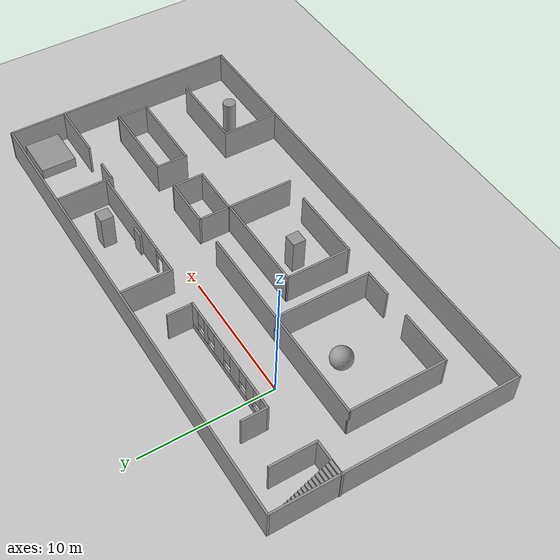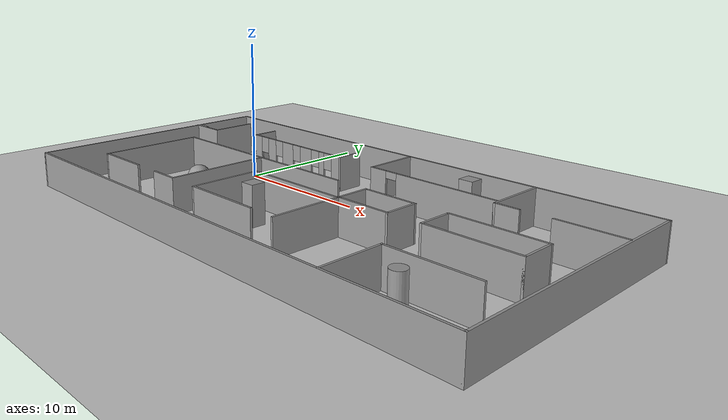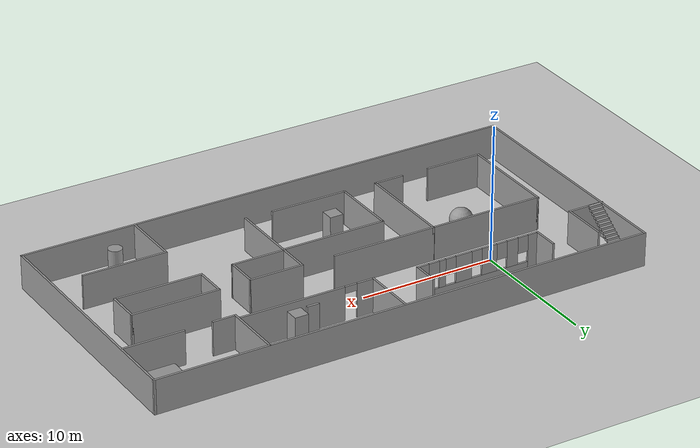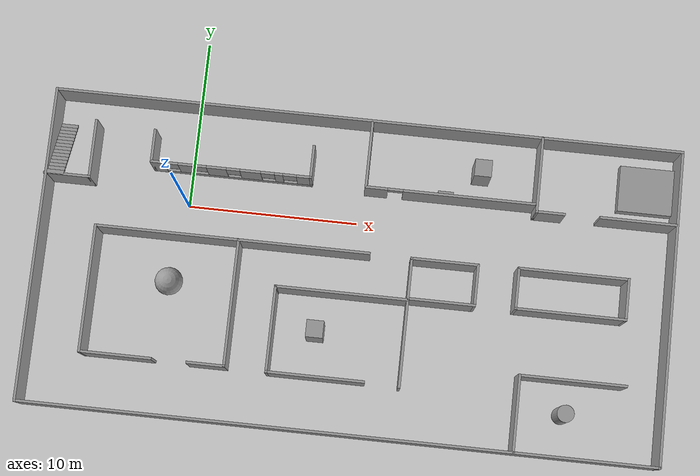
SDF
<sdf version="1.6">
 <world name="default">
  <light name="sun" type="directional">
   <pose>0 0 10 0 -0 0</pose>
   <diffuse>0.8 0.8 0.8 1</diffuse>
   <specular>0.2 0.2 0.2 1</specular>
   <attenuation>
    <range>1000</range>
    <constant>0.9</constant>
    <linear>0.01</linear>
    <quadratic>0.001</quadratic>
   </attenuation>
   <direction>-0.5 0.1 -0.9</direction>
  </light>
  <model name="ground_plane">
   <static>1</static>
   <link name="link">
    <collision name="collision">
     <geometry><plane><normal>0 0 1</normal><size>100 100</size></plane></geometry>
     <surface>
      <contact><collide_bitmask>65535</collide_bitmask></contact>
      <friction><ode><mu>100</mu><mu2>50</mu2></ode></friction>
     </surface>
    </collision>
    <visual name="visual">
     <cast_shadows>0</cast_shadows>
     <geometry><plane><normal>0 0 1</normal><size>100 100</size></plane></geometry>
     <material>
      <script><uri>file://media/materials/scripts/gazebo.material</uri><name>Gazebo/Grey</name></script>
     </material>
    </visual>
   </link>
  </model>
  <gravity>0 0 -9.8</gravity>
  <magnetic_field>6e-06 2.3e-05 -4.2e-05</magnetic_field>
  <atmosphere type="adiabatic"/>
  <physics name="default_physics" default="0" type="ode">
   <max_step_size>0.001</max_step_size>
   <real_time_factor>1</real_time_factor>
   <real_time_update_rate>1000</real_time_update_rate>
  </physics>
  <scene><ambient>0.4 0.4 0.4 1</ambient><background>0.7 0.7 0.7 1</background><shadows>1</shadows></scene>
  <audio><device>default</device></audio>
  <spherical_coordinates>
   <surface_model>EARTH_WGS84</surface_model>
   <latitude_deg>0</latitude_deg>
   <longitude_deg>0</longitude_deg>
   <elevation>0</elevation>
   <heading_deg>0</heading_deg>
  </spherical_coordinates>
  <model name="room">
   <pose>10.095 -3.39157 0 0 -0 0</pose>
   <link name="Door_0">
    <collision name="Door_0_Collision">
     <geometry><box><size>0.9 0.17 2</size></box></geometry>
     <pose>0 0 1 0 -0 0</pose>
    </collision>
    <visual name="Door_0_Visual">
     <pose>0 0 1 0 -0 0</pose>
     <geometry><box><size>0.9 0.17 2</size></box></geometry>
     <material>
      <script><uri>file://media/materials/scripts/gazebo.material</uri><name>Gazebo/Grey</name></script>
     </material>
    </visual>
    <pose>4.9284 5.43687 0 0 -0 0</pose>
   </link>
   <link name="Stairs_1">
    <visual name="Stairs_1_Visual_0">
     <pose>-17.8369 7.5009 0.083333 0 -0 0</pose>
     <geometry><box><size>1 0.233333 0.166667</size></box></geometry>
     <material>
      <script><uri>file://media/materials/scripts/gazebo.material</uri><name>Gazebo/Grey</name></script>
      <ambient>1 1 1 1</ambient>
     </material>
     <meta><layer>0</layer></meta>
    </visual>
    <collision name="Stairs_1_Collision_0">
     <geometry><box><size>1 0.233333 0.166667</size></box></geometry>
     <pose>-17.8369 7.5009 0.083333 0 -0 0</pose>
    </collision>
    <visual name="Stairs_1_Visual_1">
     <pose>-17.8369 7.26757 0.25 0 -0 0</pose>
     <geometry><box><size>1 0.233333 0.166667</size></box></geometry>
     <material>
      <script><uri>file://media/materials/scripts/gazebo.material</uri><name>Gazebo/Grey</name></script>
      <ambient>1 1 1 1</ambient>
     </material>
     <meta><layer>0</layer></meta>
    </visual>
    <collision name="Stairs_1_Collision_1">
     <geometry><box><size>1 0.233333 0.166667</size></box></geometry>
     <pose>-17.8369 7.26757 0.25 0 -0 0</pose>
    </collision>
    <visual name="Stairs_1_Visual_2">
     <pose>-17.8369 7.03424 0.416667 0 -0 0</pose>
     <geometry><box><size>1 0.233333 0.166667</size></box></geometry>
     <material>
      <script><uri>file://media/materials/scripts/gazebo.material</uri><name>Gazebo/Grey</name></script>
      <ambient>1 1 1 1</ambient>
     </material>
     <meta><layer>0</layer></meta>
    </visual>
    <collision name="Stairs_1_Collision_2">
     <geometry><box><size>1 0.233333 0.166667</size></box></geometry>
     <pose>-17.8369 7.03424 0.416667 0 -0 0</pose>
    </collision>
    <visual name="Stairs_1_Visual_3">
     <pose>-17.8369 6.8009 0.583333 0 -0 0</pose>
     <geometry><box><size>1 0.233333 0.166667</size></box></geometry>
     <material>
      <script><uri>file://media/materials/scripts/gazebo.material</uri><name>Gazebo/Grey</name></script>
      <ambient>1 1 1 1</ambient>
     </material>
     <meta><layer>0</layer></meta>
    </visual>
    <collision name="Stairs_1_Collision_3">
     <geometry><box><size>1 0.233333 0.166667</size></box></geometry>
     <pose>-17.8369 6.8009 0.583333 0 -0 0</pose>
    </collision>
    <visual name="Stairs_1_Visual_4">
     <pose>-17.8369 6.56757 0.75 0 -0 0</pose>
     <geometry><box><size>1 0.233333 0.166667</size></box></geometry>
     <material>
      <script><uri>file://media/materials/scripts/gazebo.material</uri><name>Gazebo/Grey</name></script>
      <ambient>1 1 1 1</ambient>
     </material>
     <meta><layer>0</layer></meta>
    </visual>
    <collision name="Stairs_1_Collision_4">
     <geometry><box><size>1 0.233333 0.166667</size></box></geometry>
     <pose>-17.8369 6.56757 0.75 0 -0 0</pose>
    </collision>
    <visual name="Stairs_1_Visual_5">
     <pose>-17.8369 6.33424 0.916667 0 -0 0</pose>
     <geometry><box><size>1 0.233333 0.166667</size></box></geometry>
     <material>
      <script><uri>file://media/materials/scripts/gazebo.material</uri><name>Gazebo/Grey</name></script>
      <ambient>1 1 1 1</ambient>
     </material>
     <meta><layer>0</layer></meta>
    </visual>
    <collision name="Stairs_1_Collision_5">
     <geometry><box><size>1 0.233333 0.166667</size></box></geometry>
     <pose>-17.8369 6.33424 0.916667 0 -0 0</pose>
    </collision>
    <visual name="Stairs_1_Visual_6">
     <pose>-17.8369 6.1009 1.08333 0 -0 0</pose>
     <geometry><box><size>1 0.233333 0.166667</size></box></geometry>
     <material>
      <script><uri>file://media/materials/scripts/gazebo.material</uri><name>Gazebo/Grey</name></script>
      <ambient>1 1 1 1</ambient>
     </material>
     <meta><layer>0</layer></meta>
    </visual>
    <collision name="Stairs_1_Collision_6">
     <geometry><box><size>1 0.233333 0.166667</size></box></geometry>
     <pose>-17.8369 6.1009 1.08333 0 -0 0</pose>
    </collision>
    <visual name="Stairs_1_Visual_7">
     <pose>-17.8369 5.86757 1.25 0 -0 0</pose>
     <geometry><box><size>1 0.233333 0.166667</size></box></geometry>
     <material>
      <script><uri>file://media/materials/scripts/gazebo.material</uri><name>Gazebo/Grey</name></script>
      <ambient>1 1 1 1</ambient>
     </material>
     <meta><layer>0</layer></meta>
    </visual>
    <collision name="Stairs_1_Collision_7">
     <geometry><box><size>1 0.233333 0.166667</size></box></geometry>
     <pose>-17.8369 5.86757 1.25 0 -0 0</pose>
    </collision>
    <visual name="Stairs_1_Visual_8">
     <pose>-17.8369 5.63424 1.41667 0 -0 0</pose>
     <geometry><box><size>1 0.233333 0.166667</size></box></geometry>
     <material>
      <script><uri>file://media/materials/scripts/gazebo.material</uri><name>Gazebo/Grey</name></script>
      <ambient>1 1 1 1</ambient>
     </material>
     <meta><layer>0</layer></meta>
    </visual>
    <collision name="Stairs_1_Collision_8">
     <geometry><box><size>1 0.233333 0.166667</size></box></geometry>
     <pose>-17.8369 5.63424 1.41667 0 -0 0</pose>
    </collision>
    <visual name="Stairs_1_Visual_9">
     <pose>-17.8369 5.4009 1.58333 0 -0 0</pose>
     <geometry><box><size>1 0.233333 0.166667</size></box></geometry>
     <material>
      <script><uri>file://media/materials/scripts/gazebo.material</uri><name>Gazebo/Grey</name></script>
      <ambient>1 1 1 1</ambient>
     </material>
     <meta><layer>0</layer></meta>
    </visual>
    <collision name="Stairs_1_Collision_9">
     <geometry><box><size>1 0.233333 0.166667</size></box></geometry>
     <pose>-17.8369 5.4009 1.58333 0 -0 0</pose>
    </collision>
    <visual name="Stairs_1_Visual_10">
     <pose>-17.8369 5.16757 1.75 0 -0 0</pose>
     <geometry><box><size>1 0.233333 0.166667</size></box></geometry>
     <material>
      <script><uri>file://media/materials/scripts/gazebo.material</uri><name>Gazebo/Grey</name></script>
      <ambient>1 1 1 1</ambient>
     </material>
     <meta><layer>0</layer></meta>
    </visual>
    <collision name="Stairs_1_Collision_10">
     <geometry><box><size>1 0.233333 0.166667</size></box></geometry>
     <pose>-17.8369 5.16757 1.75 0 -0 0</pose>
    </collision>
    <visual name="Stairs_1_Visual_11">
     <pose>-17.8369 4.93424 1.91667 0 -0 0</pose>
     <geometry><box><size>1 0.233333 0.166667</size></box></geometry>
     <material>
      <script><uri>file://media/materials/scripts/gazebo.material</uri><name>Gazebo/Grey</name></script>
      <ambient>1 1 1 1</ambient>
     </material>
     <meta><layer>0</layer></meta>
    </visual>
    <collision name="Stairs_1_Collision_11">
     <geometry><box><size>1 0.233333 0.166667</size></box></geometry>
     <pose>-17.8369 4.93424 1.91667 0 -0 0</pose>
    </collision>
    <visual name="Stairs_1_Visual_12">
     <pose>-17.8369 4.7009 2.08333 0 -0 0</pose>
     <geometry><box><size>1 0.233333 0.166667</size></box></geometry>
     <material>
      <script><uri>file://media/materials/scripts/gazebo.material</uri><name>Gazebo/Grey</name></script>
      <ambient>1 1 1 1</ambient>
     </material>
     <meta><layer>0</layer></meta>
    </visual>
    <collision name="Stairs_1_Collision_12">
     <geometry><box><size>1 0.233333 0.166667</size></box></geometry>
     <pose>-17.8369 4.7009 2.08333 0 -0 0</pose>
    </collision>
    <visual name="Stairs_1_Visual_13">
     <pose>-17.8369 4.46757 2.25 0 -0 0</pose>
     <geometry><box><size>1 0.233333 0.166667</size></box></geometry>
     <material>
      <script><uri>file://media/materials/scripts/gazebo.material</uri><name>Gazebo/Grey</name></script>
      <ambient>1 1 1 1</ambient>
     </material>
     <meta><layer>0</layer></meta>
    </visual>
    <collision name="Stairs_1_Collision_13">
     <geometry><box><size>1 0.233333 0.166667</size></box></geometry>
     <pose>-17.8369 4.46757 2.25 0 -0 0</pose>
    </collision>
    <visual name="Stairs_1_Visual_14">
     <pose>-17.8369 4.23424 2.41667 0 -0 0</pose>
     <geometry><box><size>1 0.233333 0.166667</size></box></geometry>
     <material>
      <script><uri>file://media/materials/scripts/gazebo.material</uri><name>Gazebo/Grey</name></script>
      <ambient>1 1 1 1</ambient>
     </material>
     <meta><layer>0</layer></meta>
    </visual>
    <collision name="Stairs_1_Collision_14">
     <geometry><box><size>1 0.233333 0.166667</size></box></geometry>
     <pose>-17.8369 4.23424 2.41667 0 -0 0</pose>
    </collision>
   </link>
   <link name="Wall_10">
    <collision name="Wall_10_Collision">
     <geometry><box><size>1.75 0.15 2.5</size></box></geometry>
     <pose>0 0 1.25 0 -0 0</pose>
    </collision>
    <visual name="Wall_10_Visual">
     <pose>0 0 1.25 0 -0 0</pose>
     <geometry><box><size>1.75 0.15 2.5</size></box></geometry>
     <material>
      <script><uri>file://media/materials/scripts/gazebo.material</uri><name>Gazebo/Grey</name></script>
      <ambient>1 1 1 1</ambient>
     </material>
     <meta><layer>0</layer></meta>
    </visual>
    <pose>11.0588 4.79197 0 0 -0 0</pose>
   </link>
   <link name="Wall_12">
    <collision name="Wall_12_Collision">
     <geometry><box><size>4.5 0.15 2.5</size></box></geometry>
     <pose>0 0 1.25 0 -0 0</pose>
    </collision>
    <visual name="Wall_12_Visual">
     <pose>0 0 1.25 0 -0 0</pose>
     <geometry><box><size>4.5 0.15 2.5</size></box></geometry>
     <material>
      <script><uri>file://media/materials/scripts/gazebo.material</uri><name>Gazebo/Grey</name></script>
      <ambient>1 1 1 1</ambient>
     </material>
     <meta><layer>0</layer></meta>
    </visual>
    <pose>16.1839 4.82579 0 0 -0 0</pose>
   </link>
   <link name="Wall_14">
    <collision name="Wall_14_Collision">
     <geometry><box><size>4.5 0.15 2.5</size></box></geometry>
     <pose>0 0 1.25 0 -0 0</pose>
    </collision>
    <visual name="Wall_14_Visual">
     <pose>0 0 1.25 0 -0 0</pose>
     <geometry><box><size>4.5 0.15 2.5</size></box></geometry>
     <material>
      <script><uri>file://media/materials/scripts/gazebo.material</uri><name>Gazebo/Grey</name></script>
      <ambient>1 1 1 1</ambient>
     </material>
     <meta><layer>0</layer></meta>
    </visual>
    <pose>10.1173 -6.93835 0 0 -0 1.5708</pose>
   </link>
   <link name="Wall_15">
    <collision name="Wall_15_Collision">
     <geometry><box><size>6.25 0.15 2.5</size></box></geometry>
     <pose>0 0 1.25 0 -0 0</pose>
    </collision>
    <visual name="Wall_15_Visual">
     <pose>0 0 1.25 0 -0 0</pose>
     <geometry><box><size>6.25 0.15 2.5</size></box></geometry>
     <material>
      <script><uri>file://media/materials/scripts/gazebo.material</uri><name>Gazebo/Grey</name></script>
      <ambient>1 1 1 1</ambient>
     </material>
     <meta><layer>0</layer></meta>
    </visual>
    <pose>13.1673 -4.76335 0 0 -0 0</pose>
   </link>
   <link name="Wall_17">
    <collision name="Wall_17_Collision">
     <geometry><box><size>5.25 0.15 2.5</size></box></geometry>
     <pose>0 0 1.25 0 -0 0</pose>
    </collision>
    <visual name="Wall_17_Visual">
     <pose>0 0 1.25 0 -0 0</pose>
     <geometry><box><size>5.25 0.15 2.5</size></box></geometry>
     <material>
      <script><uri>file://media/materials/scripts/gazebo.material</uri><name>Gazebo/Grey</name></script>
      <ambient>1 1 1 1</ambient>
     </material>
     <meta><layer>0</layer></meta>
    </visual>
    <pose>3.32461 -3.59155 0 0 -0 1.5708</pose>
   </link>
   <link name="Wall_18">
    <collision name="Wall_18_Collision">
     <geometry><box><size>4 0.15 2.5</size></box></geometry>
     <pose>0 0 1.25 0 -0 0</pose>
    </collision>
    <visual name="Wall_18_Visual">
     <pose>0 0 1.25 0 -0 0</pose>
     <geometry><box><size>4 0.15 2.5</size></box></geometry>
     <material>
      <script><uri>file://media/materials/scripts/gazebo.material</uri><name>Gazebo/Grey</name></script>
      <ambient>1 1 1 1</ambient>
     </material>
     <meta><layer>0</layer></meta>
    </visual>
    <pose>5.24961 -1.04155 0 0 -0 0</pose>
   </link>
   <link name="Wall_19">
    <collision name="Wall_19_Collision">
     <geometry><box><size>2.5 0.15 2.5</size></box></geometry>
     <pose>0 0 1.25 0 -0 0</pose>
    </collision>
    <visual name="Wall_19_Visual">
     <pose>0 0 1.25 0 -0 0</pose>
     <geometry><box><size>2.5 0.15 2.5</size></box></geometry>
     <material>
      <script><uri>file://media/materials/scripts/gazebo.material</uri><name>Gazebo/Grey</name></script>
      <ambient>1 1 1 1</ambient>
     </material>
     <meta><layer>0</layer></meta>
    </visual>
    <pose>7.17461 0.133447 0 0 -0 1.5708</pose>
   </link>
   <link name="Wall_20">
    <collision name="Wall_20_Collision">
     <geometry><box><size>4 0.15 2.5</size></box></geometry>
     <pose>0 0 1.25 0 -0 0</pose>
    </collision>
    <visual name="Wall_20_Visual">
     <pose>0 0 1.25 0 -0 0</pose>
     <geometry><box><size>4 0.15 2.5</size></box></geometry>
     <material>
      <script><uri>file://media/materials/scripts/gazebo.material</uri><name>Gazebo/Grey</name></script>
      <ambient>1 1 1 1</ambient>
     </material>
     <meta><layer>0</layer></meta>
    </visual>
    <pose>5.24961 1.30845 0 0 -0 3.14159</pose>
   </link>
   <link name="Wall_21">
    <collision name="Wall_21_Collision">
     <geometry><box><size>2.5 0.15 2.5</size></box></geometry>
     <pose>0 0 1.25 0 -0 0</pose>
    </collision>
    <visual name="Wall_21_Visual">
     <pose>0 0 1.25 0 -0 0</pose>
     <geometry><box><size>2.5 0.15 2.5</size></box></geometry>
     <material>
      <script><uri>file://media/materials/scripts/gazebo.material</uri><name>Gazebo/Grey</name></script>
      <ambient>1 1 1 1</ambient>
     </material>
     <meta><layer>0</layer></meta>
    </visual>
    <pose>3.32461 0.133447 0 0 -0 -1.5708</pose>
   </link>
   <link name="Wall_23">
    <collision name="Wall_23_Collision">
     <geometry><box><size>5.75 0.15 2.5</size></box></geometry>
     <pose>0 0 1.25 0 -0 0</pose>
    </collision>
    <visual name="Wall_23_Visual">
     <pose>0 0 1.25 0 -0 0</pose>
     <geometry><box><size>5.75 0.15 2.5</size></box></geometry>
     <material>
      <script><uri>file://media/materials/scripts/gazebo.material</uri><name>Gazebo/Grey</name></script>
      <ambient>1 1 1 1</ambient>
     </material>
     <meta><layer>0</layer></meta>
    </visual>
    <pose>-1.52735 -6.0708 0 0 -0 3.14159</pose>
   </link>
   <link name="Wall_24">
    <collision name="Wall_24_Collision">
     <geometry><box><size>5 0.15 2.5</size></box></geometry>
     <pose>0 0 1.25 0 -0 0</pose>
    </collision>
    <visual name="Wall_24_Visual">
     <pose>0 0 1.25 0 -0 0</pose>
     <geometry><box><size>5 0.15 2.5</size></box></geometry>
     <material>
      <script><uri>file://media/materials/scripts/gazebo.material</uri><name>Gazebo/Grey</name></script>
      <ambient>1 1 1 1</ambient>
     </material>
     <meta><layer>0</layer></meta>
    </visual>
    <pose>-4.32735 -3.6458 0 0 -0 1.5708</pose>
   </link>
   <link name="Wall_27">
    <collision name="Wall_27_Collision">
     <geometry><box><size>0.25 0.15 2.5</size></box></geometry>
     <pose>0 0 1.25 0 -0 0</pose>
    </collision>
    <visual name="Wall_27_Visual">
     <pose>0 0 1.25 0 -0 0</pose>
     <geometry><box><size>0.25 0.15 2.5</size></box></geometry>
     <material>
      <script><uri>file://media/materials/scripts/gazebo.material</uri><name>Gazebo/Grey</name></script>
      <ambient>1 1 1 1</ambient>
     </material>
     <meta><layer>0</layer></meta>
    </visual>
    <pose>-4.32735 -1.1708 0 0 -0 1.5708</pose>
   </link>
   <link name="Wall_28">
    <collision name="Wall_28_Collision">
     <geometry><box><size>7.75 0.15 2.5</size></box></geometry>
     <pose>0 0 1.25 0 -0 0</pose>
    </collision>
    <visual name="Wall_28_Visual">
     <pose>0 0 1.25 0 -0 0</pose>
     <geometry><box><size>7.75 0.15 2.5</size></box></geometry>
     <material>
      <script><uri>file://media/materials/scripts/gazebo.material</uri><name>Gazebo/Grey</name></script>
      <ambient>1 1 1 1</ambient>
     </material>
     <meta><layer>0</layer></meta>
    </visual>
    <pose>-0.527349 -1.1208 0 0 -0 0</pose>
   </link>
   <link name="Wall_30">
    <collision name="Wall_30_Collision">
     <geometry><box><size>2.5 0.15 2.5</size></box></geometry>
     <pose>0 0 1.25 0 -0 0</pose>
    </collision>
    <visual name="Wall_30_Visual">
     <pose>0 0 1.25 0 -0 0</pose>
     <geometry><box><size>2.5 0.15 2.5</size></box></geometry>
     <material>
      <script><uri>file://media/materials/scripts/gazebo.material</uri><name>Gazebo/Grey</name></script>
      <ambient>1 1 1 1</ambient>
     </material>
     <meta><layer>0</layer></meta>
    </visual>
    <pose>9.54299 0.201035 0 0 -0 -1.5708</pose>
   </link>
   <link name="Wall_31">
    <collision name="Wall_31_Collision">
     <geometry><box><size>6.5 0.15 2.5</size></box></geometry>
     <pose>0 0 1.25 0 -0 0</pose>
    </collision>
    <visual name="Wall_31_Visual">
     <pose>0 0 1.25 0 -0 0</pose>
     <geometry><box><size>6.5 0.15 2.5</size></box></geometry>
     <material>
      <script><uri>file://media/materials/scripts/gazebo.material</uri><name>Gazebo/Grey</name></script>
      <ambient>1 1 1 1</ambient>
     </material>
     <meta><layer>0</layer></meta>
    </visual>
    <pose>12.718 -0.973964 0 0 -0 0</pose>
   </link>
   <link name="Wall_32">
    <collision name="Wall_32_Collision">
     <geometry><box><size>2.5 0.15 2.5</size></box></geometry>
     <pose>0 0 1.25 0 -0 0</pose>
    </collision>
    <visual name="Wall_32_Visual">
     <pose>0 0 1.25 0 -0 0</pose>
     <geometry><box><size>2.5 0.15 2.5</size></box></geometry>
     <material>
      <script><uri>file://media/materials/scripts/gazebo.material</uri><name>Gazebo/Grey</name></script>
      <ambient>1 1 1 1</ambient>
     </material>
     <meta><layer>0</layer></meta>
    </visual>
    <pose>15.893 0.201035 0 0 -0 1.5708</pose>
   </link>
   <link name="Wall_33">
    <collision name="Wall_33_Collision">
     <geometry><box><size>6.5 0.15 2.5</size></box></geometry>
     <pose>0 0 1.25 0 -0 0</pose>
    </collision>
    <visual name="Wall_33_Visual">
     <pose>0 0 1.25 0 -0 0</pose>
     <geometry><box><size>6.5 0.15 2.5</size></box></geometry>
     <material>
      <script><uri>file://media/materials/scripts/gazebo.material</uri><name>Gazebo/Grey</name></script>
      <ambient>1 1 1 1</ambient>
     </material>
     <meta><layer>0</layer></meta>
    </visual>
    <pose>12.718 1.37604 0 0 -0 3.14159</pose>
   </link>
   <link name="Wall_35">
    <collision name="Wall_35_Collision">
     <geometry><box><size>7.5 0.15 2.5</size></box></geometry>
     <pose>0 0 1.25 0 -0 0</pose>
    </collision>
    <visual name="Wall_35_Visual">
     <pose>0 0 1.25 0 -0 0</pose>
     <geometry><box><size>7.5 0.15 2.5</size></box></geometry>
     <material>
      <script><uri>file://media/materials/scripts/gazebo.material</uri><name>Gazebo/Grey</name></script>
      <ambient>1 1 1 1</ambient>
     </material>
     <meta><layer>0</layer></meta>
    </visual>
    <pose>-6.76189 -2.33231 0 0 -0 1.5708</pose>
   </link>
   <link name="Wall_36">
    <collision name="Wall_36_Collision">
     <geometry><box><size>7.75 0.15 2.5</size></box></geometry>
     <pose>0 0 1.25 0 -0 0</pose>
    </collision>
    <visual name="Wall_36_Visual">
     <pose>0 0 1.25 0 -0 0</pose>
     <geometry><box><size>7.75 0.15 2.5</size></box></geometry>
     <material>
      <script><uri>file://media/materials/scripts/gazebo.material</uri><name>Gazebo/Grey</name></script>
      <ambient>1 1 1 1</ambient>
     </material>
     <meta><layer>0</layer></meta>
    </visual>
    <pose>-2.9619 1.34269 0 0 -0 0</pose>
   </link>
   <link name="Wall_38">
    <collision name="Wall_38_Collision">
     <geometry><box><size>2.25 0.15 2.5</size></box></geometry>
     <pose>0 0 1.25 0 -0 0</pose>
    </collision>
    <visual name="Wall_38_Visual">
     <pose>0 0 1.25 0 -0 0</pose>
     <geometry><box><size>2.25 0.15 2.5</size></box></geometry>
     <material>
      <script><uri>file://media/materials/scripts/gazebo.material</uri><name>Gazebo/Grey</name></script>
      <ambient>1 1 1 1</ambient>
     </material>
     <meta><layer>0</layer></meta>
    </visual>
    <pose>-7.81189 -6.00731 0 0 -0 3.14159</pose>
   </link>
   <link name="Wall_4">
    <collision name="Wall_4_Collision">
     <geometry><box><size>18.5 0.15 2.5</size></box></geometry>
     <pose>0 0 1.25 0 -0 0</pose>
    </collision>
    <visual name="Wall_4_Visual">
     <pose>0 0 1.25 0 -0 0</pose>
     <geometry><box><size>18.5 0.15 2.5</size></box></geometry>
     <material>
      <script><uri>file://media/materials/scripts/gazebo.material</uri><name>Gazebo/Grey</name></script>
      <ambient>1 1 1 1</ambient>
     </material>
     <meta><layer>0</layer></meta>
    </visual>
    <pose>-18.3978 0 0 0 -0 -1.5708</pose>
   </link>
   <link name="Wall_40">
    <collision name="Wall_40_Collision">
     <geometry><box><size>4.25 0.15 2.5</size></box></geometry>
     <pose>0 0 1.25 0 -0 0</pose>
    </collision>
    <visual name="Wall_40_Visual">
     <pose>0 0 1.25 0 -0 0</pose>
     <geometry><box><size>4.25 0.15 2.5</size></box></geometry>
     <material>
      <script><uri>file://media/materials/scripts/gazebo.material</uri><name>Gazebo/Grey</name></script>
      <ambient>1 1 1 1</ambient>
     </material>
     <meta><layer>0</layer></meta>
    </visual>
    <pose>-13.0573 -6.00731 0 0 -0 3.14159</pose>
   </link>
   <link name="Wall_41">
    <collision name="Wall_41_Collision">
     <geometry><box><size>7.5 0.15 2.5</size></box></geometry>
     <pose>0 0 1.25 0 -0 0</pose>
    </collision>
    <visual name="Wall_41_Visual">
     <pose>0 0 1.25 0 -0 0</pose>
     <geometry><box><size>7.5 0.15 2.5</size></box></geometry>
     <material>
      <script><uri>file://media/materials/scripts/gazebo.material</uri><name>Gazebo/Grey</name></script>
      <ambient>1 1 1 1</ambient>
     </material>
     <meta><layer>0</layer></meta>
    </visual>
    <pose>-15.1073 -2.33231 0 0 -0 1.5708</pose>
   </link>
   <link name="Wall_42">
    <collision name="Wall_42_Collision">
     <geometry><box><size>8.49542 0.15 2.5</size></box></geometry>
     <pose>0 0 1.25 0 -0 0</pose>
    </collision>
    <visual name="Wall_42_Visual">
     <pose>0 0 1.25 0 -0 0</pose>
     <geometry><box><size>8.49542 0.15 2.5</size></box></geometry>
     <material>
      <script><uri>file://media/materials/scripts/gazebo.material</uri><name>Gazebo/Grey</name></script>
      <ambient>1 1 1 1</ambient>
     </material>
     <meta><layer>0</layer></meta>
    </visual>
    <pose>-10.9346 1.34269 0 0 -0 0</pose>
   </link>
   <link name="Wall_44">
    <collision name="Wall_44_Collision">
     <geometry><box><size>4 0.15 2.5</size></box></geometry>
     <pose>0 0 1.25 0 -0 0</pose>
    </collision>
    <visual name="Wall_44_Visual">
     <pose>0 0 1.25 0 -0 0</pose>
     <geometry><box><size>4 0.15 2.5</size></box></geometry>
     <material>
      <script><uri>file://media/materials/scripts/gazebo.material</uri><name>Gazebo/Grey</name></script>
      <ambient>1 1 1 1</ambient>
     </material>
     <meta><layer>0</layer></meta>
    </visual>
    <pose>0.252283 7.14202 0 0 -0 -1.5708</pose>
   </link>
   <link name="Wall_46">
    <collision name="Wall_46_Collision">
     <geometry><box><size>2.75 0.15 2.5</size></box></geometry>
     <pose>0 0 1.25 0 -0 0</pose>
    </collision>
    <visual name="Wall_46_Visual">
     <pose>0 0 1.25 0 -0 0</pose>
     <geometry><box><size>2.75 0.15 2.5</size></box></geometry>
     <material>
      <script><uri>file://media/materials/scripts/gazebo.material</uri><name>Gazebo/Grey</name></script>
      <ambient>1 1 1 1</ambient>
     </material>
     <meta><layer>0</layer></meta>
    </visual>
    <pose>-17.1522 4.14479 0 0 -0 0</pose>
   </link>
   <link name="Wall_47">
    <collision name="Wall_47_Collision">
     <geometry><box><size>3.5 0.15 2.5</size></box></geometry>
     <pose>0 0 1.25 0 -0 0</pose>
    </collision>
    <visual name="Wall_47_Visual">
     <pose>0 0 1.25 0 -0 0</pose>
     <geometry><box><size>3.5 0.15 2.5</size></box></geometry>
     <material>
      <script><uri>file://media/materials/scripts/gazebo.material</uri><name>Gazebo/Grey</name></script>
      <ambient>1 1 1 1</ambient>
     </material>
     <meta><layer>0</layer></meta>
    </visual>
    <pose>-15.8522 5.81979 0 0 -0 1.5708</pose>
   </link>
   <link name="Wall_49">
    <collision name="Wall_49_Collision">
     <geometry><box><size>2 0.15 2.5</size></box></geometry>
     <pose>0 0 1.25 0 -0 0</pose>
    </collision>
    <visual name="Wall_49_Visual">
     <pose>0 0 1.25 0 -0 0</pose>
     <geometry><box><size>2 0.15 2.5</size></box></geometry>
     <material>
      <script><uri>file://media/materials/scripts/gazebo.material</uri><name>Gazebo/Grey</name></script>
      <ambient>1 1 1 1</ambient>
     </material>
     <meta><layer>0</layer></meta>
    </visual>
    <pose>-12.3609 6.35771 0 0 -0 -1.5708</pose>
   </link>
   <link name="Wall_5">
    <collision name="Wall_5_Collision">
     <geometry><box><size>37 0.15 2.5</size></box></geometry>
     <pose>0 0 1.25 0 -0 0</pose>
    </collision>
    <visual name="Wall_5_Visual">
     <pose>0 0 1.25 0 -0 0</pose>
     <geometry><box><size>37 0.15 2.5</size></box></geometry>
     <material>
      <script><uri>file://media/materials/scripts/gazebo.material</uri><name>Gazebo/Grey</name></script>
      <ambient>1 1 1 1</ambient>
     </material>
     <meta><layer>0</layer></meta>
    </visual>
    <pose>0.02719 -9.175 0 0 -0 0</pose>
   </link>
   <link name="Wall_50">
    <pose>-7.68593 5.43271 0 0 -0 0</pose>
    <visual name="Wall_50_Visual_0">
     <pose>-4.32798 0 1.25 0 -0 0</pose>
     <geometry><box><size>0.84403 0.15 2.5</size></box></geometry>
     <material>
      <script><uri>file://media/materials/scripts/gazebo.material</uri><name>Gazebo/Grey</name></script>
      <ambient>1 1 1 1</ambient>
     </material>
     <meta><layer>0</layer></meta>
    </visual>
    <collision name="Wall_50_Collision_0">
     <geometry><box><size>0.84403 0.15 2.5</size></box></geometry>
     <pose>-4.32798 0 1.25 0 -0 0</pose>
    </collision>
    <visual name="Wall_50_Visual_1">
     <pose>0.422015 0 0.25 0 -0 0</pose>
     <geometry><box><size>8.65597 0.15 0.5</size></box></geometry>
     <material>
      <script><uri>file://media/materials/scripts/gazebo.material</uri><name>Gazebo/Grey</name></script>
      <ambient>1 1 1 1</ambient>
     </material>
     <meta><layer>0</layer></meta>
    </visual>
    <collision name="Wall_50_Collision_1">
     <geometry><box><size>8.65597 0.15 0.5</size></box></geometry>
     <pose>0.422015 0 0.25 0 -0 0</pose>
    </collision>
    <visual name="Wall_50_Visual_2">
     <pose>-2.67534 0 1.5 0 -0 0</pose>
     <geometry><box><size>0.861253 0.15 2</size></box></geometry>
     <material>
      <script><uri>file://media/materials/scripts/gazebo.material</uri><name>Gazebo/Grey</name></script>
      <ambient>1 1 1 1</ambient>
     </material>
     <meta><layer>0</layer></meta>
    </visual>
    <collision name="Wall_50_Collision_2">
     <geometry><box><size>0.861253 0.15 2</size></box></geometry>
     <pose>-2.67534 0 1.5 0 -0 0</pose>
    </collision>
    <visual name="Wall_50_Visual_3">
     <pose>-0.860272 0 1.5 0 -0 0</pose>
     <geometry><box><size>1.16889 0.15 2</size></box></geometry>
     <material>
      <script><uri>file://media/materials/scripts/gazebo.material</uri><name>Gazebo/Grey</name></script>
      <ambient>1 1 1 1</ambient>
     </material>
     <meta><layer>0</layer></meta>
    </visual>
    <collision name="Wall_50_Collision_3">
     <geometry><box><size>1.16889 0.15 2</size></box></geometry>
     <pose>-0.860272 0 1.5 0 -0 0</pose>
    </collision>
    <visual name="Wall_50_Visual_4">
     <pose>1.13938 0 1.5 0 -0 0</pose>
     <geometry><box><size>1.23042 0.15 2</size></box></geometry>
     <material>
      <script><uri>file://media/materials/scripts/gazebo.material</uri><name>Gazebo/Grey</name></script>
      <ambient>1 1 1 1</ambient>
     </material>
     <meta><layer>0</layer></meta>
    </visual>
    <collision name="Wall_50_Collision_4">
     <geometry><box><size>1.23042 0.15 2</size></box></geometry>
     <pose>1.13938 0 1.5 0 -0 0</pose>
    </collision>
    <visual name="Wall_50_Visual_5">
     <pose>2.80064 0 1.5 0 -0 0</pose>
     <geometry><box><size>0.492085 0.15 2</size></box></geometry>
     <material>
      <script><uri>file://media/materials/scripts/gazebo.material</uri><name>Gazebo/Grey</name></script>
      <ambient>1 1 1 1</ambient>
     </material>
     <meta><layer>0</layer></meta>
    </visual>
    <collision name="Wall_50_Collision_5">
     <geometry><box><size>0.492085 0.15 2</size></box></geometry>
     <pose>2.80064 0 1.5 0 -0 0</pose>
    </collision>
    <visual name="Wall_50_Visual_6">
     <pose>4.29834 0 1.5 0 -0 0</pose>
     <geometry><box><size>0.90332 0.15 2</size></box></geometry>
     <material>
      <script><uri>file://media/materials/scripts/gazebo.material</uri><name>Gazebo/Grey</name></script>
      <ambient>1 1 1 1</ambient>
     </material>
     <meta><layer>0</layer></meta>
    </visual>
    <collision name="Wall_50_Collision_6">
     <geometry><box><size>0.90332 0.15 2</size></box></geometry>
     <pose>4.29834 0 1.5 0 -0 0</pose>
    </collision>
    <visual name="Wall_50_Visual_7">
     <pose>-3.50597 0 1.9 0 -0 0</pose>
     <geometry><box><size>0.8 0.15 1.2</size></box></geometry>
     <material>
      <script><uri>file://media/materials/scripts/gazebo.material</uri><name>Gazebo/Grey</name></script>
      <ambient>1 1 1 1</ambient>
     </material>
     <meta><layer>0</layer></meta>
    </visual>
    <collision name="Wall_50_Collision_7">
     <geometry><box><size>0.8 0.15 1.2</size></box></geometry>
     <pose>-3.50597 0 1.9 0 -0 0</pose>
    </collision>
    <visual name="Wall_50_Visual_8">
     <pose>-1.84472 0 1.9 0 -0 0</pose>
     <geometry><box><size>0.8 0.15 1.2</size></box></geometry>
     <material>
      <script><uri>file://media/materials/scripts/gazebo.material</uri><name>Gazebo/Grey</name></script>
      <ambient>1 1 1 1</ambient>
     </material>
     <meta><layer>0</layer></meta>
    </visual>
    <collision name="Wall_50_Collision_8">
     <geometry><box><size>0.8 0.15 1.2</size></box></geometry>
     <pose>-1.84472 0 1.9 0 -0 0</pose>
    </collision>
    <visual name="Wall_50_Visual_9">
     <pose>0.124174 0 1.9 0 -0 0</pose>
     <geometry><box><size>0.8 0.15 1.2</size></box></geometry>
     <material>
      <script><uri>file://media/materials/scripts/gazebo.material</uri><name>Gazebo/Grey</name></script>
      <ambient>1 1 1 1</ambient>
     </material>
     <meta><layer>0</layer></meta>
    </visual>
    <collision name="Wall_50_Collision_9">
     <geometry><box><size>0.8 0.15 1.2</size></box></geometry>
     <pose>0.124174 0 1.9 0 -0 0</pose>
    </collision>
    <visual name="Wall_50_Visual_10">
     <pose>2.15459 0 1.9 0 -0 0</pose>
     <geometry><box><size>0.8 0.15 1.2</size></box></geometry>
     <material>
      <script><uri>file://media/materials/scripts/gazebo.material</uri><name>Gazebo/Grey</name></script>
      <ambient>1 1 1 1</ambient>
     </material>
     <meta><layer>0</layer></meta>
    </visual>
    <collision name="Wall_50_Collision_10">
     <geometry><box><size>0.8 0.15 1.2</size></box></geometry>
     <pose>2.15459 0 1.9 0 -0 0</pose>
    </collision>
    <visual name="Wall_50_Visual_11">
     <pose>3.44668 0 1.9 0 -0 0</pose>
     <geometry><box><size>0.8 0.15 1.2</size></box></geometry>
     <material>
      <script><uri>file://media/materials/scripts/gazebo.material</uri><name>Gazebo/Grey</name></script>
      <ambient>1 1 1 1</ambient>
     </material>
     <meta><layer>0</layer></meta>
    </visual>
    <collision name="Wall_50_Collision_11">
     <geometry><box><size>0.8 0.15 1.2</size></box></geometry>
     <pose>3.44668 0 1.9 0 -0 0</pose>
    </collision>
   </link>
   <link name="Wall_51">
    <collision name="Wall_51_Collision">
     <geometry><box><size>2 0.15 2.5</size></box></geometry>
     <pose>0 0 1.25 0 -0 0</pose>
    </collision>
    <visual name="Wall_51_Visual">
     <pose>0 0 1.25 0 -0 0</pose>
     <geometry><box><size>2 0.15 2.5</size></box></geometry>
     <material>
      <script><uri>file://media/materials/scripts/gazebo.material</uri><name>Gazebo/Grey</name></script>
      <ambient>1 1 1 1</ambient>
     </material>
     <meta><layer>0</layer></meta>
    </visual>
    <pose>-3.01093 6.35771 0 0 -0 1.5708</pose>
   </link>
   <link name="Wall_54">
    <pose>5.17728 5.21702 0 0 -0 0</pose>
    <visual name="Wall_54_Visual_0">
     <pose>-4.32611 0 1.25 0 -0 0</pose>
     <geometry><box><size>1.34778 0.15 2.5</size></box></geometry>
     <material>
      <script><uri>file://media/materials/scripts/gazebo.material</uri><name>Gazebo/Grey</name></script>
      <ambient>1 1 1 1</ambient>
     </material>
     <meta><layer>0</layer></meta>
    </visual>
    <collision name="Wall_54_Collision_0">
     <geometry><box><size>1.34778 0.15 2.5</size></box></geometry>
     <pose>-4.32611 0 1.25 0 -0 0</pose>
    </collision>
    <visual name="Wall_54_Visual_1">
     <pose>1.12389 0 1.25 0 -0 0</pose>
     <geometry><box><size>7.75222 0.15 2.5</size></box></geometry>
     <material>
      <script><uri>file://media/materials/scripts/gazebo.material</uri><name>Gazebo/Grey</name></script>
      <ambient>1 1 1 1</ambient>
     </material>
     <meta><layer>0</layer></meta>
    </visual>
    <collision name="Wall_54_Collision_1">
     <geometry><box><size>7.75222 0.15 2.5</size></box></geometry>
     <pose>1.12389 0 1.25 0 -0 0</pose>
    </collision>
    <visual name="Wall_54_Visual_2">
     <pose>-3.20222 0 2.25 0 -0 0</pose>
     <geometry><box><size>0.9 0.15 0.5</size></box></geometry>
     <material>
      <script><uri>file://media/materials/scripts/gazebo.material</uri><name>Gazebo/Grey</name></script>
      <ambient>1 1 1 1</ambient>
     </material>
     <meta><layer>0</layer></meta>
    </visual>
    <collision name="Wall_54_Collision_2">
     <geometry><box><size>0.9 0.15 0.5</size></box></geometry>
     <pose>-3.20222 0 2.25 0 -0 0</pose>
    </collision>
   </link>
   <link name="Wall_6">
    <collision name="Wall_6_Collision">
     <geometry><box><size>18.5 0.15 2.5</size></box></geometry>
     <pose>0 0 1.25 0 -0 0</pose>
    </collision>
    <visual name="Wall_6_Visual">
     <pose>0 0 1.25 0 -0 0</pose>
     <geometry><box><size>18.5 0.15 2.5</size></box></geometry>
     <material>
      <script><uri>file://media/materials/scripts/gazebo.material</uri><name>Gazebo/Grey</name></script>
      <ambient>1 1 1 1</ambient>
     </material>
     <meta><layer>0</layer></meta>
    </visual>
    <pose>18.4522 0 0 0 -0 1.5708</pose>
   </link>
   <link name="Wall_7">
    <collision name="Wall_7_Collision">
     <geometry><box><size>37 0.15 2.5</size></box></geometry>
     <pose>0 0 1.25 0 -0 0</pose>
    </collision>
    <visual name="Wall_7_Visual">
     <pose>0 0 1.25 0 -0 0</pose>
     <geometry><box><size>37 0.15 2.5</size></box></geometry>
     <material>
      <script><uri>file://media/materials/scripts/gazebo.material</uri><name>Gazebo/Grey</name></script>
      <ambient>1 1 1 1</ambient>
     </material>
     <meta><layer>0</layer></meta>
    </visual>
    <pose>0.02719 9.175 0 0 -0 3.14159</pose>
   </link>
   <link name="Wall_9">
    <collision name="Wall_9_Collision">
     <geometry><box><size>4.5 0.15 2.5</size></box></geometry>
     <pose>0 0 1.25 0 -0 0</pose>
    </collision>
    <visual name="Wall_9_Visual">
     <pose>0 0 1.25 0 -0 0</pose>
     <geometry><box><size>4.5 0.15 2.5</size></box></geometry>
     <material>
      <script><uri>file://media/materials/scripts/gazebo.material</uri><name>Gazebo/Grey</name></script>
      <ambient>1 1 1 1</ambient>
     </material>
     <meta><layer>0</layer></meta>
    </visual>
    <pose>10.2588 6.96697 0 0 -0 -1.5708</pose>
   </link>
   <static>1</static>
  </model>
  <model name="unit_sphere">
   <pose>-0.594275 -4.66128 0.824145 0 -0 0</pose>
   <link name="link">
    <inertial>
     <mass>1</mass>
     <inertia><ixx>0.1</ixx><ixy>0</ixy><ixz>0</ixz><iyy>0.1</iyy><iyz>0</iyz><izz>0.1</izz></inertia>
    </inertial>
    <collision name="collision"><geometry><sphere><radius>0.824145</radius></sphere></geometry></collision>
    <visual name="visual">
     <geometry><sphere><radius>0.824145</radius></sphere></geometry>
     <material>
      <script><name>Gazebo/Grey</name><uri>file://media/materials/scripts/gazebo.material</uri></script>
     </material>
    </visual>
   </link>
  </model>
  <model name="unit_box">
   <pose>8.28189 -6.75863 1.38052 1e-06 1e-06 -1e-05</pose>
   <link name="link">
    <inertial>
     <mass>1</mass>
     <inertia>
      <ixx>0.166667</ixx>
      <ixy>0</ixy>
      <ixz>0</ixz>
      <iyy>0.166667</iyy>
      <iyz>0</iyz>
      <izz>0.166667</izz>
     </inertia>
    </inertial>
    <collision name="collision"><geometry><box><size>1 1 2.76103</size></box></geometry></collision>
    <visual name="visual">
     <geometry><box><size>1 1 2.76103</size></box></geometry>
     <material>
      <script><name>Gazebo/Grey</name><uri>file://media/materials/scripts/gazebo.material</uri></script>
     </material>
    </visual>
   </link>
  </model>
  <model name="unit_cylinder">
   <pose>22.9686 -10.0742 1.32552 0 -0 -3e-05</pose>
   <link name="link">
    <inertial>
     <mass>1</mass>
     <inertia><ixx>0.145833</ixx><ixy>0</ixy><ixz>0</ixz><iyy>0.145833</iyy><iyz>0</iyz><izz>0.125</izz></inertia>
    </inertial>
    <collision name="collision">
     <geometry><cylinder><radius>0.5</radius><length>2.65106</length></cylinder></geometry>
    </collision>
    <visual name="visual">
     <geometry><cylinder><radius>0.5</radius><length>2.65106</length></cylinder></geometry>
     <material>
      <script><name>Gazebo/Grey</name><uri>file://media/materials/scripts/gazebo.material</uri></script>
     </material>
    </visual>
   </link>
  </model>
  <model name="unit_box_clone">
   <pose>17.0375 3.59159 1.38052 0 -2e-06 -1.7e-05</pose>
   <link name="link">
    <inertial>
     <mass>1</mass>
     <inertia>
      <ixx>0.166667</ixx>
      <ixy>0</ixy>
      <ixz>0</ixz>
      <iyy>0.166667</iyy>
      <iyz>0</iyz>
      <izz>0.166667</izz>
     </inertia>
    </inertial>
    <collision name="collision"><geometry><box><size>1 1 2.76103</size></box></geometry></collision>
    <visual name="visual">
     <geometry><box><size>1 1 2.76103</size></box></geometry>
     <material>
      <script><name>Gazebo/Grey</name><uri>file://media/materials/scripts/gazebo.material</uri></script>
     </material>
    </visual>
   </link>
  </model>
  <model name="unit_box_0">
   <pose>26.8322 3.61437 0.42541 9.2e-05 -0 -1e-06</pose>
   <link name="link">
    <inertial>
     <mass>1</mass>
     <inertia>
      <ixx>0.166667</ixx>
      <ixy>0</ixy>
      <ixz>0</ixz>
      <iyy>0.166667</iyy>
      <iyz>0</iyz>
      <izz>0.166667</izz>
     </inertia>
    </inertial>
    <collision name="collision"><geometry><box><size>3.20614 2.7287 0.851068</size></box></geometry></collision>
    <visual name="visual">
     <geometry><box><size>3.20614 2.7287 0.851068</size></box></geometry>
     <material>
      <script><name>Gazebo/Grey</name><uri>file://media/materials/scripts/gazebo.material</uri></script>
     </material>
    </visual>
   </link>
  </model>
 </world>
</sdf>
